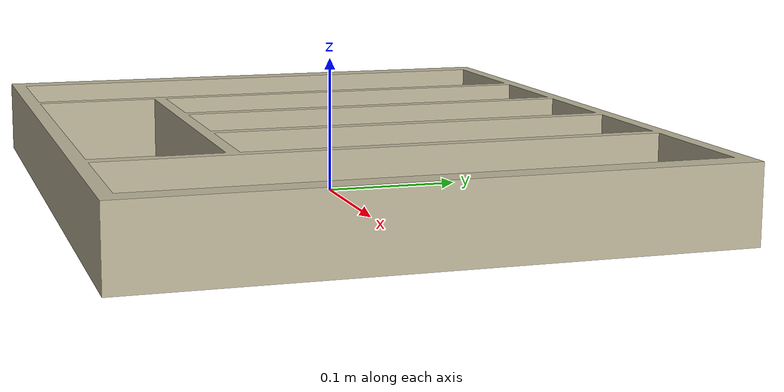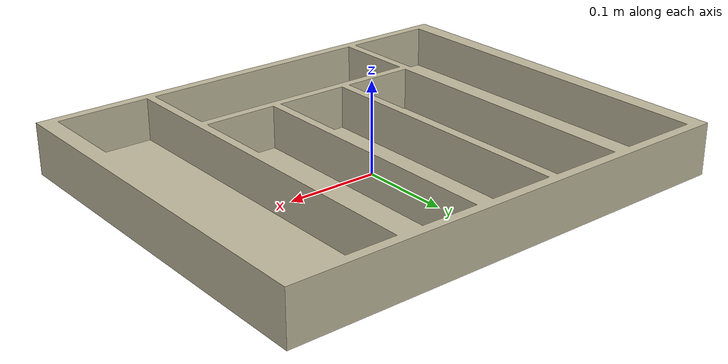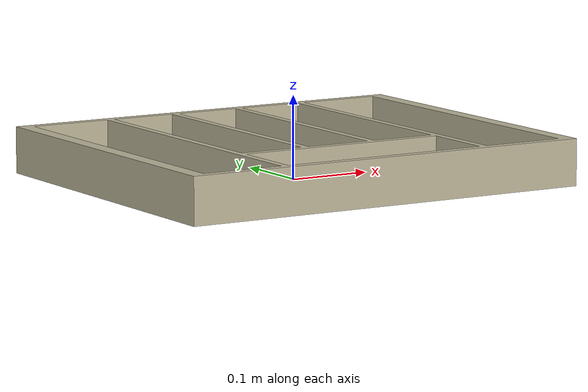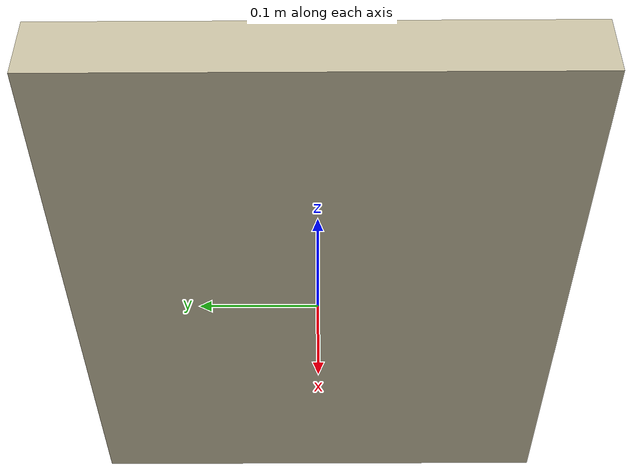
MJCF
<?xml version="1.0" encoding="utf-8"?>
<mujoco model="cutlery_tray">
  <compiler angle="radian" meshdir="assets" texturedir="assets" autolimits="true"/>
  <asset>
    <texture type="2d" name="cutlery_tray" file="cutlery_tray.png"/>
    <material name="cutlery_tray" specular="0.3" shininess="0.5" rgba="1 1 0.9 1" texture="cutlery_tray"/>
    <mesh file="cutlery_tray.obj"/>
    <mesh file="cutlery_tray_collision_001.obj"/>
    <mesh file="cutlery_tray_collision_002.obj"/>
    <mesh file="cutlery_tray_collision_003.obj"/>
    <mesh file="cutlery_tray_collision_004.obj"/>
    <mesh file="cutlery_tray_collision_005.obj"/>
    <mesh file="cutlery_tray_collision_006.obj"/>
    <mesh file="cutlery_tray_collision_007.obj"/>
    <mesh file="cutlery_tray_collision_008.obj"/>
    <mesh file="cutlery_tray_collision_009.obj"/>
    <mesh file="cutlery_tray_collision_010.obj"/>
    <mesh file="cutlery_tray_collision_011.obj"/>
  </asset>
  <default>
    <default class="cutlery_tray">
      <default class="visual">
        <geom type="mesh" mass="0.1" contype="0" conaffinity="0" group="2" euler="1.5708 0 0" material="cutlery_tray"/>
      </default>
      <default class="collision">
        <geom type="mesh" mass="0" group="3" friction="0.1" solimp="0.95 0.98 0.001" solref="0.004 1" euler="1.5708 0 0"/>
      </default>
    </default>
    <site size="0.001" rgba="0.5 0.5 0.5 0.3" group="4"/>
  </default>
  <worldbody>
    <body name="cutlery_tray" childclass="cutlery_tray">
      <geom name="mesh" mesh="cutlery_tray" class="visual"/>
      <geom name="collider_001" mesh="cutlery_tray_collision_001" class="collision"/>
      <geom name="collider_002" mesh="cutlery_tray_collision_002" class="collision"/>
      <geom name="collider_003" mesh="cutlery_tray_collision_003" class="collision"/>
      <geom name="collider_004" mesh="cutlery_tray_collision_004" class="collision"/>
      <geom name="collider_005" mesh="cutlery_tray_collision_005" class="collision"/>
      <geom name="collider_006" mesh="cutlery_tray_collision_006" class="collision"/>
      <geom name="collider_007" mesh="cutlery_tray_collision_007" class="collision"/>
      <geom name="collider_008" mesh="cutlery_tray_collision_008" class="collision"/>
      <geom name="collider_009" mesh="cutlery_tray_collision_009" class="collision"/>
      <geom name="collider_010" mesh="cutlery_tray_collision_010" class="collision"/>
      <geom name="collider_011" mesh="cutlery_tray_collision_011" class="collision"/>
      <site name="slot_1" pos="-0.19 0.0 0.05"/>
      <site name="slot_2" pos="-0.09 0.06 0.05"/>
      <site name="slot_3" pos="0 0.06 0.05"/>
      <site name="slot_4" pos="0.09 0.06 0.05"/>
      <site name="slot_5" pos="0.19 0.0 0.05"/>
      <site name="slot_6" pos="0 -0.15 0.05" euler="0 0 1.5708"/>
    </body>
  </worldbody>
</mujoco>
